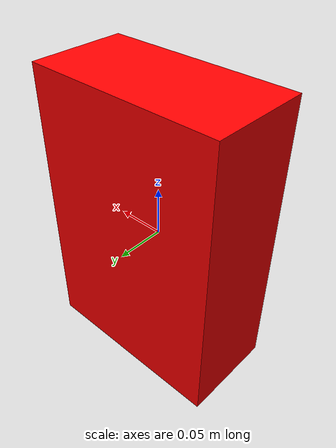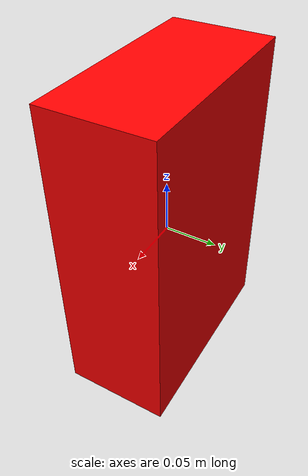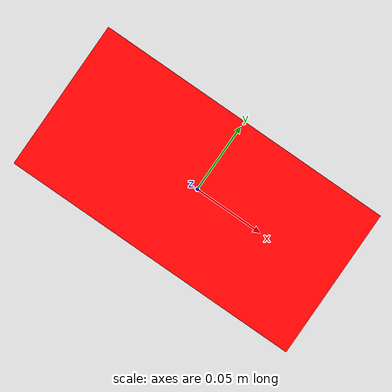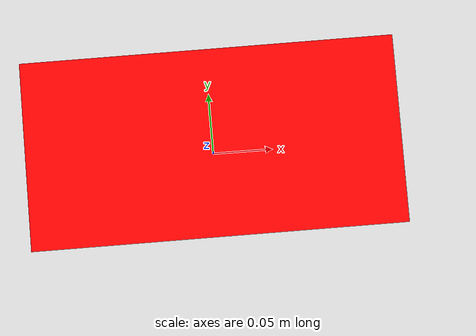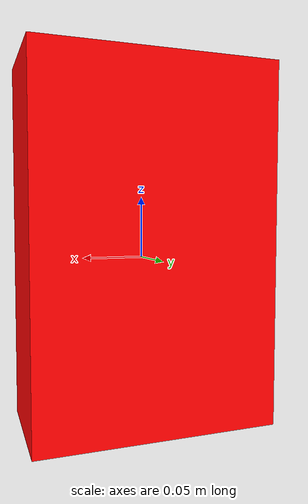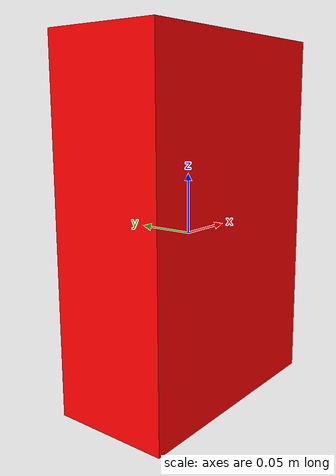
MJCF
<mujoco model="pushed_box">
    <worldbody>
        <body name="pushed_box" pos="0.0 0.0 0.0" quat="1 0 0 0">
            <geom name="pushed_box" pos="0 0 0.01" size="0.1 0.05 0.15" rgba="1 0 0 1.0" type="box" mass="0.05" friction="0.3 0.001 0.0001" priority="1"/>
            <joint name="pushed_box_joint" type="free"/>
        </body>
    </worldbody>
</mujoco>
